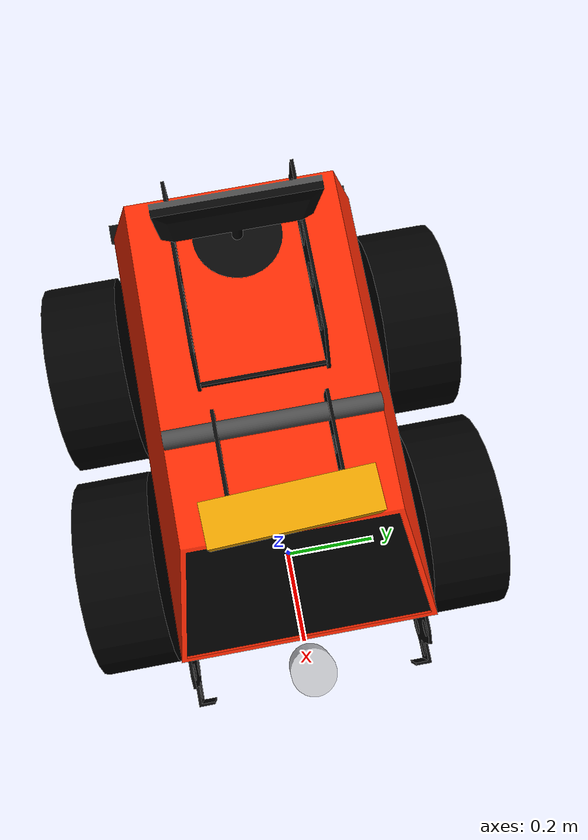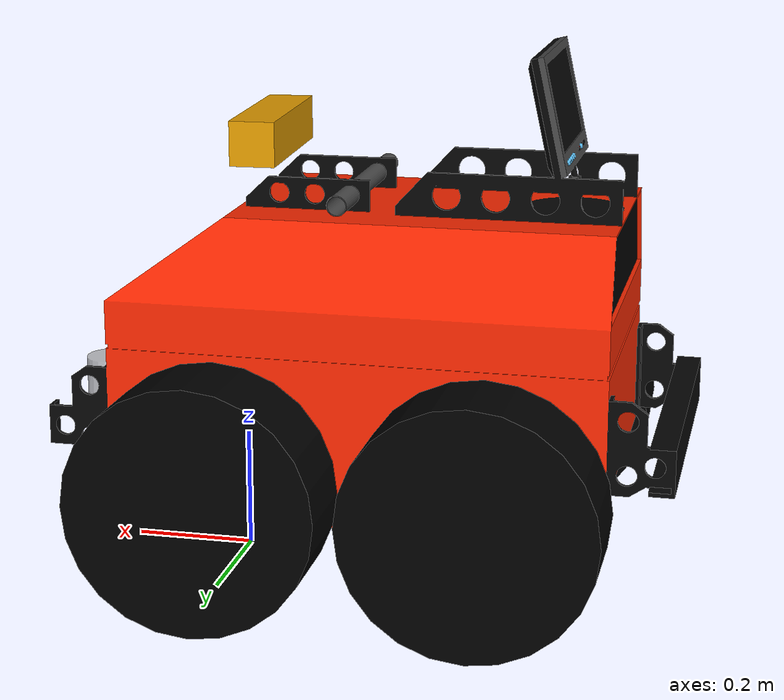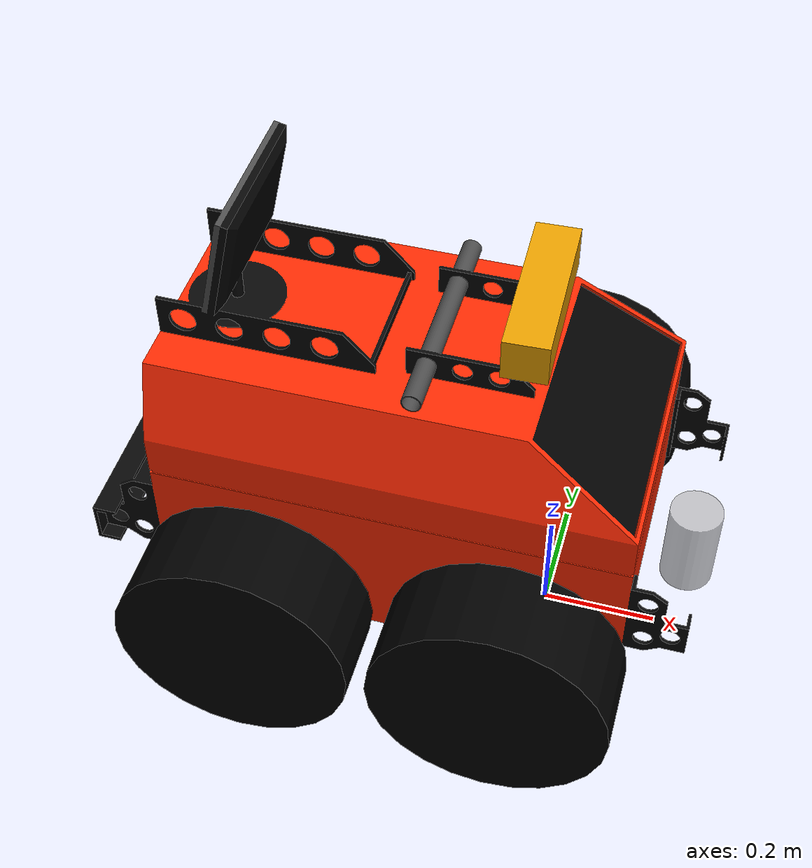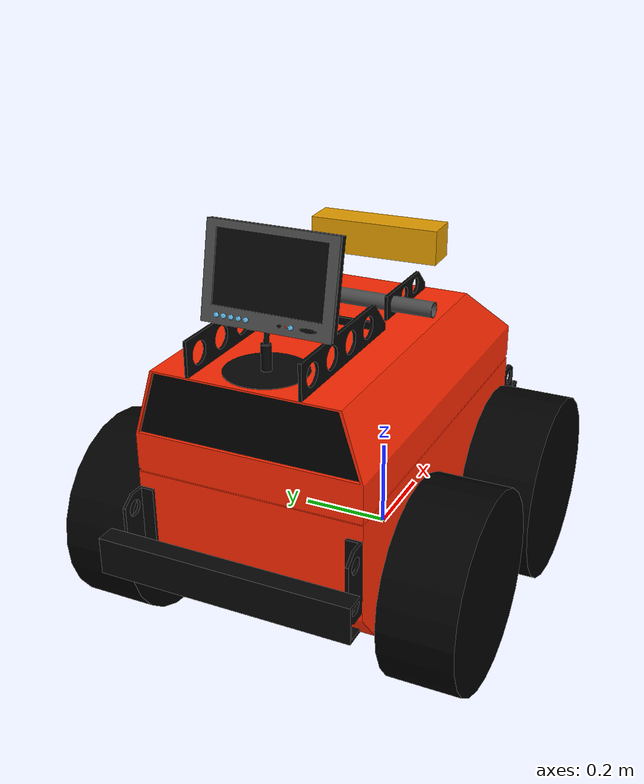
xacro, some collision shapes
<?xml version="1.0"?>
<robot xmlns:xacro="http://www.ros.org/wiki/xacro" name="atrv">

<!-- Some Color Materials -->
  <material name="Green"><color rgba="0.0 0.8 0.0 1.0"/></material>
  <material name="Red"><color rgba="0.8 0.0 0.0 1.0"/></material>
  <material name="White"><color rgba="1.0 1.0 1.0 1.0"/></material>
  <material name="Blue"><color rgba="0.0 0.0 0.8 1.0"/></material>
  <material name="Black"><color rgba="0.0 0.0 0.0 1.0"/></material>
  <material name="Grey"><color rgba="0.7 0.7 0.7 0.7"/></material>
  <material name="atrv_orange"><color rgba="0.8 0.16 0.0 1" /></material>
  <material name="clear"><color rgba="0 0 0 0"/></material>

<!-- xacro parameters -->
  <xacro:property name="M_PI" value="3.14159"/>
  <!-- Robot parameters -->
  <xacro:property name="ground_clearance" value="0.13" />
  <!-- This is not including the bumpers -->
  <xacro:property name="chassis_length" value="0.83" />
  <!-- This is including the bumpers -->
  <xacro:property name="chassis_length_bumpers" value="1.02" />
  <!-- This is not including the wheels -->
  <xacro:property name="chassis_width" value="0.46" />
  <!-- This is not including equipment and racks on the top -->
  <xacro:property name="chassis_height" value="0.50" />
  <xacro:property name="wheel_radius" value="0.20"/>
  <xacro:property name="wheel_width" value="0.15"/>

<!-- xacro macros -->
  <xacro:macro name="default_inertial" params="mass">
    <inertial>
      <mass value="${mass}" />
      <inertia ixx="1.0" ixy="0.0" ixz="0.0"
               iyy="1.0" iyz="0.0"
               izz="1.0" />
      </inertial>
  </xacro:macro>

<!-- links -->
  <!-- base_footprint -->
  <!-- The frame of the floor directly below the base_link and -->
  <!-- is needed for the navigation stack to work properly -->
  <link name="base_footprint"/>

  <!-- base_link -->
  <!-- The link that is the origin of all of the components of the -->
  <!-- robot and should also represent the main chassis via inertial, -->
  <!-- visual, and geometry elements of the link -->
  <link name="base_link">
    <xacro:default_inertial mass="80"/>

    <visual>
      <geometry>
        <mesh filename="package://gavlab_atrv_description/meshes/atrv_chassis.dae"/>
      </geometry>
    </visual>

    <collision>
      <origin xyz="0 0 ${chassis_height/2.0}" rpy="0 0 0" />
      <geometry>
        <box size="${chassis_length} ${chassis_width} ${chassis_height}" />
      </geometry>
    </collision>
  </link>

  <!-- base_footprint -> base_link -->
  <joint name="base_footprint_joint" type="fixed">
      <origin xyz="-0.23495 0 ${ground_clearance}" rpy="0 0 0"/>
      <parent link="base_footprint"/>
      <child link="base_link"/>
  </joint>

  <!-- This is a macro for the links that describe the wheels -->
  <xacro:macro name="wheel" params="prefix reflect_x reflect_y">
    <link name="${prefix}_wheel_link">
      <xacro:default_inertial mass="1"/>

      <visual>
        <origin xyz="0 0 ${wheel_width/2}" rpy="0 0 0" />
        <geometry>
          <cylinder radius="${wheel_radius}" length="${wheel_width}"/>
        </geometry>
        <material name="Black"/>
      </visual>

      <collision>
        <origin xyz="0 0 ${wheel_width/2}" rpy="0 0 0" />
        <geometry>
          <cylinder radius="${wheel_radius}" length="${wheel_width}"/>
        </geometry>
      </collision>
    </link>

    <!-- base_link -> ${prefix}_wheel_link -->
    <joint name="${prefix}_wheel_joint" type="fixed">
      <parent link="base_link"/>
      <child link="${prefix}_wheel_link"/>
      <origin xyz="${(chassis_length/2 - wheel_radius)*reflect_x} ${(chassis_width/2 + 0.03)*reflect_y} ${wheel_radius - ground_clearance}"
              rpy="${(M_PI/2)*reflect_y*-1} 0 0"/>
    </joint>
  </xacro:macro>

  <!-- left_front_wheel_link -->
  <xacro:wheel prefix="left_front" reflect_x="1" reflect_y="1" />
  <!-- left_rear_wheel_link -->
  <xacro:wheel prefix="left_rear" reflect_x="-1" reflect_y="1" />
  <!-- right_front_wheel_link -->
  <xacro:wheel prefix="right_front" reflect_x="1" reflect_y="-1" />
  <!-- right_rear_wheel_link -->
  <xacro:wheel prefix="right_rear" reflect_x="-1" reflect_y="-1" />

  <!-- Imu Link -->
  <link name="imu_frame"/>

  <joint name="base_imu_joint" type="fixed">
    <origin xyz="-0.11 0 0.27" rpy="0 0 0"/>
    <parent link="base_link"/>
    <child link="imu_frame"/>
  </joint>

  <!-- laser_link -->
  <xacro:property name="laser_radius" value="0.045"/>
  <xacro:property name="laser_height" value="0.16"/>
  <link name="laser_link">
    <xacro:default_inertial mass="3"/>

    <visual>
      <origin xyz="0 0 ${0.04-laser_height/2.0}" rpy="0 0 0"/>
      <geometry>
        <cylinder radius="${laser_radius}" length="${laser_height}"/>
      </geometry>
      <material name="Grey"/>
    </visual>

    <collision>
      <origin xyz="0 0 ${0.04-laser_height/2.0}" rpy="0 0 0"/>
      <geometry>
        <cylinder radius="${laser_radius}" length="${laser_height}"/>
      </geometry>
    </collision>
  </link>

  <!-- base_link -> laser_link -->
  <joint name="base_laser_joint" type="fixed">
    <origin xyz="${0.015+laser_radius+chassis_length/2.0} 0 ${0.28-ground_clearance}" rpy="0 0 0"/>
    <parent link="base_link"/>
    <child link="laser_link"/>
  </joint>

  <!-- kinect_link -->
  <link name="asus_link">
    <xacro:default_inertial mass="0.0001"/>
    <visual>
      <origin xyz="0 0 0" rpy="0 0 0"/>
      <geometry>
        <mesh filename="package://gavlab_atrv_description/meshes/kinect.dae"/>
      </geometry>
    </visual>
    <collision>
      <origin xyz="0 0 0" rpy="0 0 0"/>
      <geometry>
        <box size="0.0730 0.2760 0.0720"/>
      </geometry>
    </collision>
  </link>

  <!-- base_link -> base_kinect_join -->
  <joint name="base_kinect_joint" type="fixed">
    <origin xyz="${(chassis_length/2)-0.229} 0 ${chassis_height+0.092}" rpy="0 0 0.04"/>
    <parent link="base_link"/>
    <child link="asus_link"/>
  </joint>

</robot>
